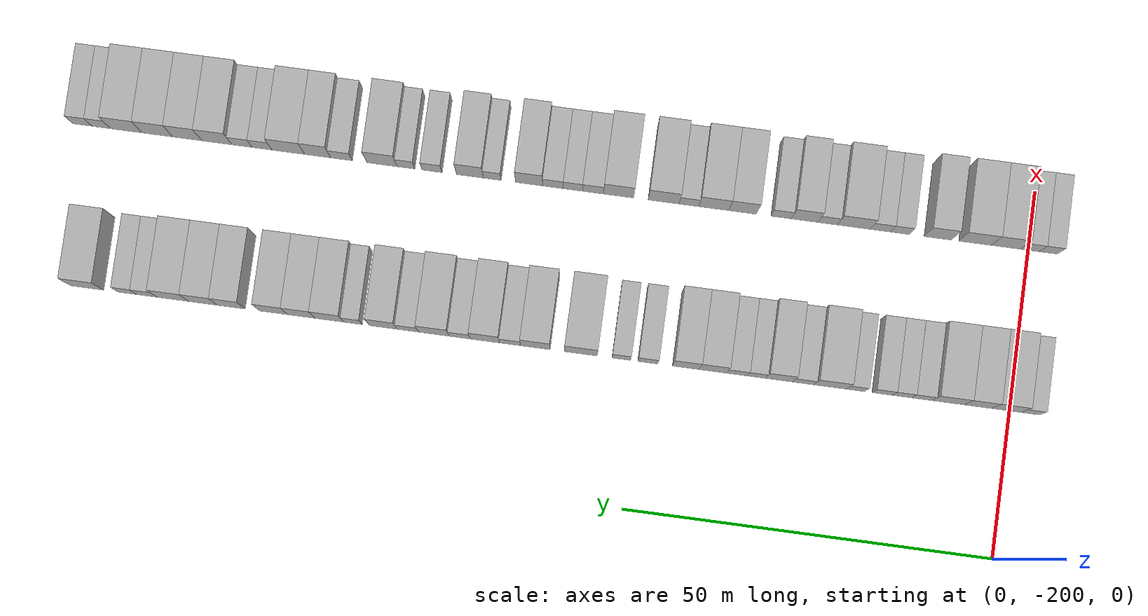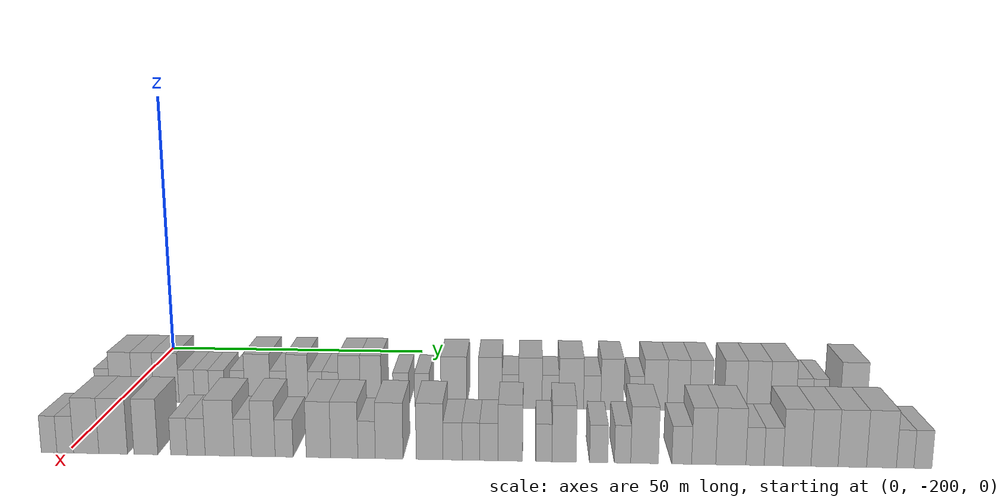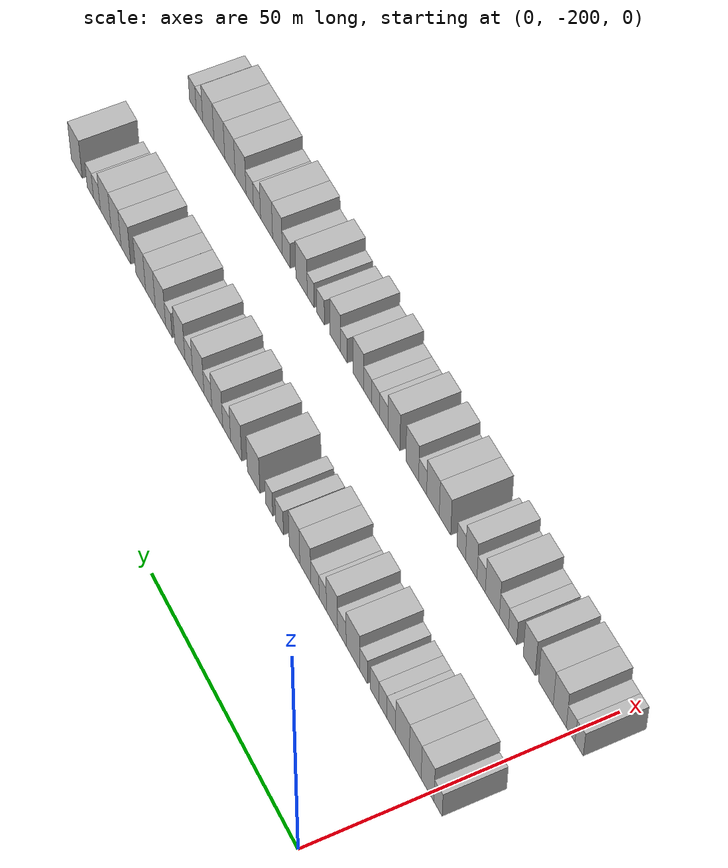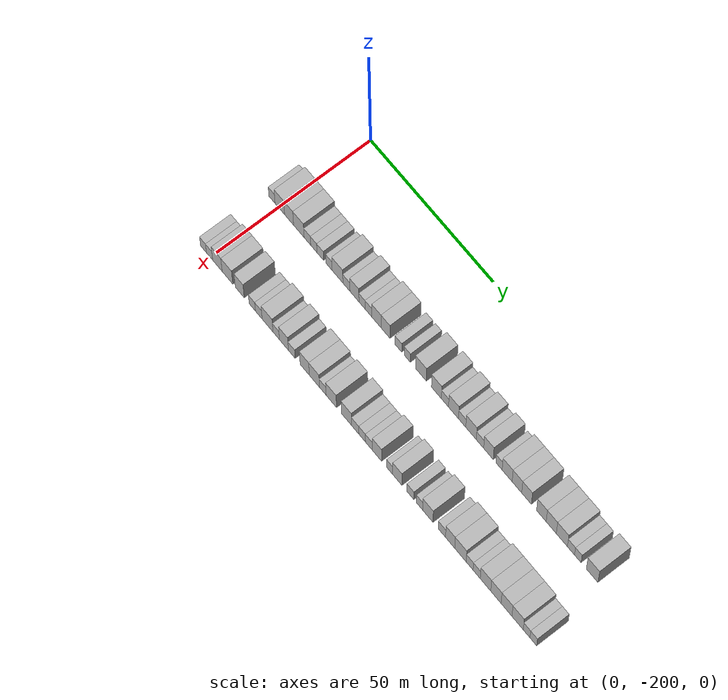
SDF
<sdf version="1.6">
 <world name="default">
  <model name="building_1">
   <static>1</static>
   <pose>25.0000 -202.7227 0 0.000000 0.000000 0.000000</pose>
   <link name="link">
    <pose>0 0 3.00 0 0 0</pose>
    <collision name="collision"><geometry><box><size>10.0000 2.5547 6.0000</size></box></geometry></collision>
    <visual name="visual">
     <cast_shadows>0</cast_shadows>
     <geometry><box><size>10.0000 2.5547 6.0000</size></box></geometry>
     <material>
      <script>
       <uri>model://HANNAS_wall/materials/scripts</uri>
       <uri>model://HANNAS_wall/materials/textures</uri>
       <name>vrc/HANNAS_wall</name>
      </script>
     </material>
    </visual>
   </link>
  </model>
  <model name="building_2">
   <static>1</static>
   <pose>25.0000 -199.4642 0 0.000000 0.000000 0.000000</pose>
   <link name="link">
    <pose>0 0 4.50 0 0 0</pose>
    <collision name="collision"><geometry><box><size>10.0000 3.9621 9.0000</size></box></geometry></collision>
    <visual name="visual">
     <cast_shadows>0</cast_shadows>
     <geometry><box><size>10.0000 3.9621 9.0000</size></box></geometry>
     <material>
      <script>
       <uri>model://HANNAS_wall/materials/scripts</uri>
       <uri>model://HANNAS_wall/materials/textures</uri>
       <name>vrc/HANNAS_wall</name>
      </script>
     </material>
    </visual>
   </link>
  </model>
  <model name="building_3">
   <static>1</static>
   <pose>25.0000 -195.6137 0 0.000000 0.000000 0.000000</pose>
   <link name="link">
    <pose>0 0 4.50 0 0 0</pose>
    <collision name="collision"><geometry><box><size>10.0000 3.7389 9.0000</size></box></geometry></collision>
    <visual name="visual">
     <cast_shadows>0</cast_shadows>
     <geometry><box><size>10.0000 3.7389 9.0000</size></box></geometry>
     <material>
      <script>
       <uri>model://HANNAS_wall/materials/scripts</uri>
       <uri>model://HANNAS_wall/materials/textures</uri>
       <name>vrc/HANNAS_wall</name>
      </script>
     </material>
    </visual>
   </link>
  </model>
  <model name="building_4">
   <static>1</static>
   <pose>25.0000 -191.5522 0 0.000000 0.000000 0.000000</pose>
   <link name="link">
    <pose>0 0 4.50 0 0 0</pose>
    <collision name="collision"><geometry><box><size>10.0000 4.3840 9.0000</size></box></geometry></collision>
    <visual name="visual">
     <cast_shadows>0</cast_shadows>
     <geometry><box><size>10.0000 4.3840 9.0000</size></box></geometry>
     <material>
      <script>
       <uri>model://HANNAS_wall/materials/scripts</uri>
       <uri>model://HANNAS_wall/materials/textures</uri>
       <name>vrc/HANNAS_wall</name>
      </script>
     </material>
    </visual>
   </link>
  </model>
  <model name="building_5">
   <static>1</static>
   <pose>25.0000 -188.0011 0 0.000000 0.000000 0.000000</pose>
   <link name="link">
    <pose>0 0 3.00 0 0 0</pose>
    <collision name="collision"><geometry><box><size>10.0000 2.7184 6.0000</size></box></geometry></collision>
    <visual name="visual">
     <cast_shadows>0</cast_shadows>
     <geometry><box><size>10.0000 2.7184 6.0000</size></box></geometry>
     <material>
      <script>
       <uri>model://HANNAS_wall/materials/scripts</uri>
       <uri>model://HANNAS_wall/materials/textures</uri>
       <name>vrc/HANNAS_wall</name>
      </script>
     </material>
    </visual>
   </link>
  </model>
  <model name="building_6">
   <static>1</static>
   <pose>25.0000 -185.3521 0 0.000000 0.000000 0.000000</pose>
   <link name="link">
    <pose>0 0 3.00 0 0 0</pose>
    <collision name="collision"><geometry><box><size>10.0000 2.5795 6.0000</size></box></geometry></collision>
    <visual name="visual">
     <cast_shadows>0</cast_shadows>
     <geometry><box><size>10.0000 2.5795 6.0000</size></box></geometry>
     <material>
      <script>
       <uri>model://HANNAS_wall/materials/scripts</uri>
       <uri>model://HANNAS_wall/materials/textures</uri>
       <name>vrc/HANNAS_wall</name>
      </script>
     </material>
    </visual>
   </link>
  </model>
  <model name="building_7">
   <static>1</static>
   <pose>25.0000 -182.6948 0 0.000000 0.000000 0.000000</pose>
   <link name="link">
    <pose>0 0 3.00 0 0 0</pose>
    <collision name="collision"><geometry><box><size>10.0000 2.7350 6.0000</size></box></geometry></collision>
    <visual name="visual">
     <cast_shadows>0</cast_shadows>
     <geometry><box><size>10.0000 2.7350 6.0000</size></box></geometry>
     <material>
      <script>
       <uri>model://HANNAS_wall/materials/scripts</uri>
       <uri>model://HANNAS_wall/materials/textures</uri>
       <name>vrc/HANNAS_wall</name>
      </script>
     </material>
    </visual>
   </link>
  </model>
  <model name="building_8">
   <static>1</static>
   <pose>25.0000 -179.0899 0 0.000000 0.000000 0.000000</pose>
   <link name="link">
    <pose>0 0 3.00 0 0 0</pose>
    <collision name="collision"><geometry><box><size>10.0000 2.4749 6.0000</size></box></geometry></collision>
    <visual name="visual">
     <cast_shadows>0</cast_shadows>
     <geometry><box><size>10.0000 2.4749 6.0000</size></box></geometry>
     <material>
      <script>
       <uri>model://HANNAS_wall/materials/scripts</uri>
       <uri>model://HANNAS_wall/materials/textures</uri>
       <name>vrc/HANNAS_wall</name>
      </script>
     </material>
    </visual>
   </link>
  </model>
  <model name="building_9">
   <static>1</static>
   <pose>25.0000 -175.6218 0 0.000000 0.000000 0.000000</pose>
   <link name="link">
    <pose>0 0 4.50 0 0 0</pose>
    <collision name="collision"><geometry><box><size>10.0000 4.4612 9.0000</size></box></geometry></collision>
    <visual name="visual">
     <cast_shadows>0</cast_shadows>
     <geometry><box><size>10.0000 4.4612 9.0000</size></box></geometry>
     <material>
      <script>
       <uri>model://HANNAS_wall/materials/scripts</uri>
       <uri>model://HANNAS_wall/materials/textures</uri>
       <name>vrc/HANNAS_wall</name>
      </script>
     </material>
    </visual>
   </link>
  </model>
  <model name="building_10">
   <static>1</static>
   <pose>25.0000 -171.9620 0 0.000000 0.000000 0.000000</pose>
   <link name="link">
    <pose>0 0 3.00 0 0 0</pose>
    <collision name="collision"><geometry><box><size>10.0000 2.8583 6.0000</size></box></geometry></collision>
    <visual name="visual">
     <cast_shadows>0</cast_shadows>
     <geometry><box><size>10.0000 2.8583 6.0000</size></box></geometry>
     <material>
      <script>
       <uri>model://HANNAS_wall/materials/scripts</uri>
       <uri>model://HANNAS_wall/materials/textures</uri>
       <name>vrc/HANNAS_wall</name>
      </script>
     </material>
    </visual>
   </link>
  </model>
  <model name="building_11">
   <static>1</static>
   <pose>25.0000 -168.6852 0 0.000000 0.000000 0.000000</pose>
   <link name="link">
    <pose>0 0 4.50 0 0 0</pose>
    <collision name="collision"><geometry><box><size>10.0000 3.6953 9.0000</size></box></geometry></collision>
    <visual name="visual">
     <cast_shadows>0</cast_shadows>
     <geometry><box><size>10.0000 3.6953 9.0000</size></box></geometry>
     <material>
      <script>
       <uri>model://HANNAS_wall/materials/scripts</uri>
       <uri>model://HANNAS_wall/materials/textures</uri>
       <name>vrc/HANNAS_wall</name>
      </script>
     </material>
    </visual>
   </link>
  </model>
  <model name="building_12">
   <static>1</static>
   <pose>25.0000 -165.6079 0 0.000000 0.000000 0.000000</pose>
   <link name="link">
    <pose>0 0 3.00 0 0 0</pose>
    <collision name="collision"><geometry><box><size>10.0000 2.4591 6.0000</size></box></geometry></collision>
    <visual name="visual">
     <cast_shadows>0</cast_shadows>
     <geometry><box><size>10.0000 2.4591 6.0000</size></box></geometry>
     <material>
      <script>
       <uri>model://HANNAS_wall/materials/scripts</uri>
       <uri>model://HANNAS_wall/materials/textures</uri>
       <name>vrc/HANNAS_wall</name>
      </script>
     </material>
    </visual>
   </link>
  </model>
  <model name="building_13">
   <static>1</static>
   <pose>25.0000 -162.9786 0 0.000000 0.000000 0.000000</pose>
   <link name="link">
    <pose>0 0 3.00 0 0 0</pose>
    <collision name="collision"><geometry><box><size>10.0000 2.7996 6.0000</size></box></geometry></collision>
    <visual name="visual">
     <cast_shadows>0</cast_shadows>
     <geometry><box><size>10.0000 2.7996 6.0000</size></box></geometry>
     <material>
      <script>
       <uri>model://HANNAS_wall/materials/scripts</uri>
       <uri>model://HANNAS_wall/materials/textures</uri>
       <name>vrc/HANNAS_wall</name>
      </script>
     </material>
    </visual>
   </link>
  </model>
  <model name="building_14">
   <static>1</static>
   <pose>25.0000 -159.7097 0 0.000000 0.000000 0.000000</pose>
   <link name="link">
    <pose>0 0 4.50 0 0 0</pose>
    <collision name="collision"><geometry><box><size>10.0000 3.7382 9.0000</size></box></geometry></collision>
    <visual name="visual">
     <cast_shadows>0</cast_shadows>
     <geometry><box><size>10.0000 3.7382 9.0000</size></box></geometry>
     <material>
      <script>
       <uri>model://HANNAS_wall/materials/scripts</uri>
       <uri>model://HANNAS_wall/materials/textures</uri>
       <name>vrc/HANNAS_wall</name>
      </script>
     </material>
    </visual>
   </link>
  </model>
  <model name="building_15">
   <static>1</static>
   <pose>25.0000 -156.0241 0 0.000000 0.000000 0.000000</pose>
   <link name="link">
    <pose>0 0 4.50 0 0 0</pose>
    <collision name="collision"><geometry><box><size>10.0000 3.6329 9.0000</size></box></geometry></collision>
    <visual name="visual">
     <cast_shadows>0</cast_shadows>
     <geometry><box><size>10.0000 3.6329 9.0000</size></box></geometry>
     <material>
      <script>
       <uri>model://HANNAS_wall/materials/scripts</uri>
       <uri>model://HANNAS_wall/materials/textures</uri>
       <name>vrc/HANNAS_wall</name>
      </script>
     </material>
    </visual>
   </link>
  </model>
  <model name="building_16">
   <static>1</static>
   <pose>25.0000 -150.8501 0 0.000000 0.000000 0.000000</pose>
   <link name="link">
    <pose>0 0 3.00 0 0 0</pose>
    <collision name="collision"><geometry><box><size>10.0000 2.7150 6.0000</size></box></geometry></collision>
    <visual name="visual">
     <cast_shadows>0</cast_shadows>
     <geometry><box><size>10.0000 2.7150 6.0000</size></box></geometry>
     <material>
      <script>
       <uri>model://HANNAS_wall/materials/scripts</uri>
       <uri>model://HANNAS_wall/materials/textures</uri>
       <name>vrc/HANNAS_wall</name>
      </script>
     </material>
    </visual>
   </link>
  </model>
  <model name="building_17">
   <static>1</static>
   <pose>25.0000 -147.2384 0 0.000000 0.000000 0.000000</pose>
   <link name="link">
    <pose>0 0 3.00 0 0 0</pose>
    <collision name="collision"><geometry><box><size>10.0000 2.5084 6.0000</size></box></geometry></collision>
    <visual name="visual">
     <cast_shadows>0</cast_shadows>
     <geometry><box><size>10.0000 2.5084 6.0000</size></box></geometry>
     <material>
      <script>
       <uri>model://HANNAS_wall/materials/scripts</uri>
       <uri>model://HANNAS_wall/materials/textures</uri>
       <name>vrc/HANNAS_wall</name>
      </script>
     </material>
    </visual>
   </link>
  </model>
  <model name="building_18">
   <static>1</static>
   <pose>25.0000 -141.7645 0 0.000000 0.000000 0.000000</pose>
   <link name="link">
    <pose>0 0 4.50 0 0 0</pose>
    <collision name="collision"><geometry><box><size>10.0000 4.4394 9.0000</size></box></geometry></collision>
    <visual name="visual">
     <cast_shadows>0</cast_shadows>
     <geometry><box><size>10.0000 4.4394 9.0000</size></box></geometry>
     <material>
      <script>
       <uri>model://HANNAS_wall/materials/scripts</uri>
       <uri>model://HANNAS_wall/materials/textures</uri>
       <name>vrc/HANNAS_wall</name>
      </script>
     </material>
    </visual>
   </link>
  </model>
  <model name="building_19">
   <static>1</static>
   <pose>25.0000 -135.5468 0 0.000000 0.000000 0.000000</pose>
   <link name="link">
    <pose>0 0 4.50 0 0 0</pose>
    <collision name="collision"><geometry><box><size>10.0000 3.9960 9.0000</size></box></geometry></collision>
    <visual name="visual">
     <cast_shadows>0</cast_shadows>
     <geometry><box><size>10.0000 3.9960 9.0000</size></box></geometry>
     <material>
      <script>
       <uri>model://HANNAS_wall/materials/scripts</uri>
       <uri>model://HANNAS_wall/materials/textures</uri>
       <name>vrc/HANNAS_wall</name>
      </script>
     </material>
    </visual>
   </link>
  </model>
  <model name="building_20">
   <static>1</static>
   <pose>25.0000 -132.1186 0 0.000000 0.000000 0.000000</pose>
   <link name="link">
    <pose>0 0 3.00 0 0 0</pose>
    <collision name="collision"><geometry><box><size>10.0000 2.8604 6.0000</size></box></geometry></collision>
    <visual name="visual">
     <cast_shadows>0</cast_shadows>
     <geometry><box><size>10.0000 2.8604 6.0000</size></box></geometry>
     <material>
      <script>
       <uri>model://HANNAS_wall/materials/scripts</uri>
       <uri>model://HANNAS_wall/materials/textures</uri>
       <name>vrc/HANNAS_wall</name>
      </script>
     </material>
    </visual>
   </link>
  </model>
  <model name="building_21">
   <static>1</static>
   <pose>25.0000 -128.6998 0 0.000000 0.000000 0.000000</pose>
   <link name="link">
    <pose>0 0 4.50 0 0 0</pose>
    <collision name="collision"><geometry><box><size>10.0000 3.9771 9.0000</size></box></geometry></collision>
    <visual name="visual">
     <cast_shadows>0</cast_shadows>
     <geometry><box><size>10.0000 3.9771 9.0000</size></box></geometry>
     <material>
      <script>
       <uri>model://HANNAS_wall/materials/scripts</uri>
       <uri>model://HANNAS_wall/materials/textures</uri>
       <name>vrc/HANNAS_wall</name>
      </script>
     </material>
    </visual>
   </link>
  </model>
  <model name="building_22">
   <static>1</static>
   <pose>25.0000 -125.2669 0 0.000000 0.000000 0.000000</pose>
   <link name="link">
    <pose>0 0 3.00 0 0 0</pose>
    <collision name="collision"><geometry><box><size>10.0000 2.8887 6.0000</size></box></geometry></collision>
    <visual name="visual">
     <cast_shadows>0</cast_shadows>
     <geometry><box><size>10.0000 2.8887 6.0000</size></box></geometry>
     <material>
      <script>
       <uri>model://HANNAS_wall/materials/scripts</uri>
       <uri>model://HANNAS_wall/materials/textures</uri>
       <name>vrc/HANNAS_wall</name>
      </script>
     </material>
    </visual>
   </link>
  </model>
  <model name="building_23">
   <static>1</static>
   <pose>25.0000 -121.7365 0 0.000000 0.000000 0.000000</pose>
   <link name="link">
    <pose>0 0 4.50 0 0 0</pose>
    <collision name="collision"><geometry><box><size>10.0000 4.1721 9.0000</size></box></geometry></collision>
    <visual name="visual">
     <cast_shadows>0</cast_shadows>
     <geometry><box><size>10.0000 4.1721 9.0000</size></box></geometry>
     <material>
      <script>
       <uri>model://HANNAS_wall/materials/scripts</uri>
       <uri>model://HANNAS_wall/materials/textures</uri>
       <name>vrc/HANNAS_wall</name>
      </script>
     </material>
    </visual>
   </link>
  </model>
  <model name="building_24">
   <static>1</static>
   <pose>25.0000 -118.1904 0 0.000000 0.000000 0.000000</pose>
   <link name="link">
    <pose>0 0 3.00 0 0 0</pose>
    <collision name="collision"><geometry><box><size>10.0000 2.9200 6.0000</size></box></geometry></collision>
    <visual name="visual">
     <cast_shadows>0</cast_shadows>
     <geometry><box><size>10.0000 2.9200 6.0000</size></box></geometry>
     <material>
      <script>
       <uri>model://HANNAS_wall/materials/scripts</uri>
       <uri>model://HANNAS_wall/materials/textures</uri>
       <name>vrc/HANNAS_wall</name>
      </script>
     </material>
    </visual>
   </link>
  </model>
  <model name="building_25">
   <static>1</static>
   <pose>25.0000 -114.8295 0 0.000000 0.000000 0.000000</pose>
   <link name="link">
    <pose>0 0 4.50 0 0 0</pose>
    <collision name="collision"><geometry><box><size>10.0000 3.8018 9.0000</size></box></geometry></collision>
    <visual name="visual">
     <cast_shadows>0</cast_shadows>
     <geometry><box><size>10.0000 3.8018 9.0000</size></box></geometry>
     <material>
      <script>
       <uri>model://HANNAS_wall/materials/scripts</uri>
       <uri>model://HANNAS_wall/materials/textures</uri>
       <name>vrc/HANNAS_wall</name>
      </script>
     </material>
    </visual>
   </link>
  </model>
  <model name="building_26">
   <static>1</static>
   <pose>25.0000 -110.6860 0 0.000000 0.000000 0.000000</pose>
   <link name="link">
    <pose>0 0 3.00 0 0 0</pose>
    <collision name="collision"><geometry><box><size>10.0000 2.4853 6.0000</size></box></geometry></collision>
    <visual name="visual">
     <cast_shadows>0</cast_shadows>
     <geometry><box><size>10.0000 2.4853 6.0000</size></box></geometry>
     <material>
      <script>
       <uri>model://HANNAS_wall/materials/scripts</uri>
       <uri>model://HANNAS_wall/materials/textures</uri>
       <name>vrc/HANNAS_wall</name>
      </script>
     </material>
    </visual>
   </link>
  </model>
  <model name="building_27">
   <static>1</static>
   <pose>25.0000 -107.4767 0 0.000000 0.000000 0.000000</pose>
   <link name="link">
    <pose>0 0 4.50 0 0 0</pose>
    <collision name="collision"><geometry><box><size>10.0000 3.9333 9.0000</size></box></geometry></collision>
    <visual name="visual">
     <cast_shadows>0</cast_shadows>
     <geometry><box><size>10.0000 3.9333 9.0000</size></box></geometry>
     <material>
      <script>
       <uri>model://HANNAS_wall/materials/scripts</uri>
       <uri>model://HANNAS_wall/materials/textures</uri>
       <name>vrc/HANNAS_wall</name>
      </script>
     </material>
    </visual>
   </link>
  </model>
  <model name="building_28">
   <static>1</static>
   <pose>25.0000 -103.6304 0 0.000000 0.000000 0.000000</pose>
   <link name="link">
    <pose>0 0 4.50 0 0 0</pose>
    <collision name="collision"><geometry><box><size>10.0000 3.7592 9.0000</size></box></geometry></collision>
    <visual name="visual">
     <cast_shadows>0</cast_shadows>
     <geometry><box><size>10.0000 3.7592 9.0000</size></box></geometry>
     <material>
      <script>
       <uri>model://HANNAS_wall/materials/scripts</uri>
       <uri>model://HANNAS_wall/materials/textures</uri>
       <name>vrc/HANNAS_wall</name>
      </script>
     </material>
    </visual>
   </link>
  </model>
  <model name="building_29">
   <static>1</static>
   <pose>25.0000 -99.8501 0 0.000000 0.000000 0.000000</pose>
   <link name="link">
    <pose>0 0 4.50 0 0 0</pose>
    <collision name="collision"><geometry><box><size>10.0000 3.8014 9.0000</size></box></geometry></collision>
    <visual name="visual">
     <cast_shadows>0</cast_shadows>
     <geometry><box><size>10.0000 3.8014 9.0000</size></box></geometry>
     <material>
      <script>
       <uri>model://HANNAS_wall/materials/scripts</uri>
       <uri>model://HANNAS_wall/materials/textures</uri>
       <name>vrc/HANNAS_wall</name>
      </script>
     </material>
    </visual>
   </link>
  </model>
  <model name="building_30">
   <static>1</static>
   <pose>25.0000 -94.0682 0 0.000000 0.000000 0.000000</pose>
   <link name="link">
    <pose>0 0 4.50 0 0 0</pose>
    <collision name="collision"><geometry><box><size>10.0000 3.7626 9.0000</size></box></geometry></collision>
    <visual name="visual">
     <cast_shadows>0</cast_shadows>
     <geometry><box><size>10.0000 3.7626 9.0000</size></box></geometry>
     <material>
      <script>
       <uri>model://HANNAS_wall/materials/scripts</uri>
       <uri>model://HANNAS_wall/materials/textures</uri>
       <name>vrc/HANNAS_wall</name>
      </script>
     </material>
    </visual>
   </link>
  </model>
  <model name="building_31">
   <static>1</static>
   <pose>25.0000 -90.2141 0 0.000000 0.000000 0.000000</pose>
   <link name="link">
    <pose>0 0 4.50 0 0 0</pose>
    <collision name="collision"><geometry><box><size>10.0000 3.9455 9.0000</size></box></geometry></collision>
    <visual name="visual">
     <cast_shadows>0</cast_shadows>
     <geometry><box><size>10.0000 3.9455 9.0000</size></box></geometry>
     <material>
      <script>
       <uri>model://HANNAS_wall/materials/scripts</uri>
       <uri>model://HANNAS_wall/materials/textures</uri>
       <name>vrc/HANNAS_wall</name>
      </script>
     </material>
    </visual>
   </link>
  </model>
  <model name="building_32">
   <static>1</static>
   <pose>25.0000 -86.0812 0 0.000000 0.000000 0.000000</pose>
   <link name="link">
    <pose>0 0 4.50 0 0 0</pose>
    <collision name="collision"><geometry><box><size>10.0000 4.3205 9.0000</size></box></geometry></collision>
    <visual name="visual">
     <cast_shadows>0</cast_shadows>
     <geometry><box><size>10.0000 4.3205 9.0000</size></box></geometry>
     <material>
      <script>
       <uri>model://HANNAS_wall/materials/scripts</uri>
       <uri>model://HANNAS_wall/materials/textures</uri>
       <name>vrc/HANNAS_wall</name>
      </script>
     </material>
    </visual>
   </link>
  </model>
  <model name="building_33">
   <static>1</static>
   <pose>25.0000 -82.5357 0 0.000000 0.000000 0.000000</pose>
   <link name="link">
    <pose>0 0 3.00 0 0 0</pose>
    <collision name="collision"><geometry><box><size>10.0000 2.7704 6.0000</size></box></geometry></collision>
    <visual name="visual">
     <cast_shadows>0</cast_shadows>
     <geometry><box><size>10.0000 2.7704 6.0000</size></box></geometry>
     <material>
      <script>
       <uri>model://HANNAS_wall/materials/scripts</uri>
       <uri>model://HANNAS_wall/materials/textures</uri>
       <name>vrc/HANNAS_wall</name>
      </script>
     </material>
    </visual>
   </link>
  </model>
  <model name="building_34">
   <static>1</static>
   <pose>25.0000 -79.8759 0 0.000000 0.000000 0.000000</pose>
   <link name="link">
    <pose>0 0 3.00 0 0 0</pose>
    <collision name="collision"><geometry><box><size>10.0000 2.5492 6.0000</size></box></geometry></collision>
    <visual name="visual">
     <cast_shadows>0</cast_shadows>
     <geometry><box><size>10.0000 2.5492 6.0000</size></box></geometry>
     <material>
      <script>
       <uri>model://HANNAS_wall/materials/scripts</uri>
       <uri>model://HANNAS_wall/materials/textures</uri>
       <name>vrc/HANNAS_wall</name>
      </script>
     </material>
    </visual>
   </link>
  </model>
  <model name="building_35">
   <static>1</static>
   <pose>25.0000 -74.3576 0 0.000000 0.000000 0.000000</pose>
   <link name="link">
    <pose>0 0 4.50 0 0 0</pose>
    <collision name="collision"><geometry><box><size>10.0000 4.4875 9.0000</size></box></geometry></collision>
    <visual name="visual">
     <cast_shadows>0</cast_shadows>
     <geometry><box><size>10.0000 4.4875 9.0000</size></box></geometry>
     <material>
      <script>
       <uri>model://HANNAS_wall/materials/scripts</uri>
       <uri>model://HANNAS_wall/materials/textures</uri>
       <name>vrc/HANNAS_wall</name>
      </script>
     </material>
    </visual>
   </link>
  </model>
  <model name="building_106">
   <static>1</static>
   <pose>47.0000 -202.7649 0 0.000000 0.000000 0.000000</pose>
   <link name="link">
    <pose>0 0 3.00 0 0 0</pose>
    <collision name="collision"><geometry><box><size>10.0000 2.4702 6.0000</size></box></geometry></collision>
    <visual name="visual">
     <cast_shadows>0</cast_shadows>
     <geometry><box><size>10.0000 2.4702 6.0000</size></box></geometry>
     <material>
      <script>
       <uri>model://HANNAS_wall/materials/scripts</uri>
       <uri>model://HANNAS_wall/materials/textures</uri>
       <name>vrc/HANNAS_wall</name>
      </script>
     </material>
    </visual>
   </link>
  </model>
  <model name="building_107">
   <static>1</static>
   <pose>47.0000 -200.2270 0 0.000000 0.000000 0.000000</pose>
   <link name="link">
    <pose>0 0 3.00 0 0 0</pose>
    <collision name="collision"><geometry><box><size>10.0000 2.6056 6.0000</size></box></geometry></collision>
    <visual name="visual">
     <cast_shadows>0</cast_shadows>
     <geometry><box><size>10.0000 2.6056 6.0000</size></box></geometry>
     <material>
      <script>
       <uri>model://HANNAS_wall/materials/scripts</uri>
       <uri>model://HANNAS_wall/materials/textures</uri>
       <name>vrc/HANNAS_wall</name>
      </script>
     </material>
    </visual>
   </link>
  </model>
  <model name="building_108">
   <static>1</static>
   <pose>47.0000 -196.9460 0 0.000000 0.000000 0.000000</pose>
   <link name="link">
    <pose>0 0 4.50 0 0 0</pose>
    <collision name="collision"><geometry><box><size>10.0000 3.9562 9.0000</size></box></geometry></collision>
    <visual name="visual">
     <cast_shadows>0</cast_shadows>
     <geometry><box><size>10.0000 3.9562 9.0000</size></box></geometry>
     <material>
      <script>
       <uri>model://HANNAS_wall/materials/scripts</uri>
       <uri>model://HANNAS_wall/materials/textures</uri>
       <name>vrc/HANNAS_wall</name>
      </script>
     </material>
    </visual>
   </link>
  </model>
  <model name="building_109">
   <static>1</static>
   <pose>47.0000 -192.7400 0 0.000000 0.000000 0.000000</pose>
   <link name="link">
    <pose>0 0 4.50 0 0 0</pose>
    <collision name="collision"><geometry><box><size>10.0000 4.4558 9.0000</size></box></geometry></collision>
    <visual name="visual">
     <cast_shadows>0</cast_shadows>
     <geometry><box><size>10.0000 4.4558 9.0000</size></box></geometry>
     <material>
      <script>
       <uri>model://HANNAS_wall/materials/scripts</uri>
       <uri>model://HANNAS_wall/materials/textures</uri>
       <name>vrc/HANNAS_wall</name>
      </script>
     </material>
    </visual>
   </link>
  </model>
  <model name="building_110">
   <static>1</static>
   <pose>47.0000 -187.6516 0 0.000000 0.000000 0.000000</pose>
   <link name="link">
    <pose>0 0 4.50 0 0 0</pose>
    <collision name="collision"><geometry><box><size>10.0000 3.7209 9.0000</size></box></geometry></collision>
    <visual name="visual">
     <cast_shadows>0</cast_shadows>
     <geometry><box><size>10.0000 3.7209 9.0000</size></box></geometry>
     <material>
      <script>
       <uri>model://HANNAS_wall/materials/scripts</uri>
       <uri>model://HANNAS_wall/materials/textures</uri>
       <name>vrc/HANNAS_wall</name>
      </script>
     </material>
    </visual>
   </link>
  </model>
  <model name="building_111">
   <static>1</static>
   <pose>47.0000 -182.5007 0 0.000000 0.000000 0.000000</pose>
   <link name="link">
    <pose>0 0 3.00 0 0 0</pose>
    <collision name="collision"><geometry><box><size>10.0000 2.5810 6.0000</size></box></geometry></collision>
    <visual name="visual">
     <cast_shadows>0</cast_shadows>
     <geometry><box><size>10.0000 2.5810 6.0000</size></box></geometry>
     <material>
      <script>
       <uri>model://HANNAS_wall/materials/scripts</uri>
       <uri>model://HANNAS_wall/materials/textures</uri>
       <name>vrc/HANNAS_wall</name>
      </script>
     </material>
    </visual>
   </link>
  </model>
  <model name="building_112">
   <static>1</static>
   <pose>47.0000 -179.8208 0 0.000000 0.000000 0.000000</pose>
   <link name="link">
    <pose>0 0 3.00 0 0 0</pose>
    <collision name="collision"><geometry><box><size>10.0000 2.7787 6.0000</size></box></geometry></collision>
    <visual name="visual">
     <cast_shadows>0</cast_shadows>
     <geometry><box><size>10.0000 2.7787 6.0000</size></box></geometry>
     <material>
      <script>
       <uri>model://HANNAS_wall/materials/scripts</uri>
       <uri>model://HANNAS_wall/materials/textures</uri>
       <name>vrc/HANNAS_wall</name>
      </script>
     </material>
    </visual>
   </link>
  </model>
  <model name="building_113">
   <static>1</static>
   <pose>47.0000 -176.1829 0 0.000000 0.000000 0.000000</pose>
   <link name="link">
    <pose>0 0 4.50 0 0 0</pose>
    <collision name="collision"><geometry><box><size>10.0000 4.4972 9.0000</size></box></geometry></collision>
    <visual name="visual">
     <cast_shadows>0</cast_shadows>
     <geometry><box><size>10.0000 4.4972 9.0000</size></box></geometry>
     <material>
      <script>
       <uri>model://HANNAS_wall/materials/scripts</uri>
       <uri>model://HANNAS_wall/materials/textures</uri>
       <name>vrc/HANNAS_wall</name>
      </script>
     </material>
    </visual>
   </link>
  </model>
  <model name="building_114">
   <static>1</static>
   <pose>47.0000 -172.6053 0 0.000000 0.000000 0.000000</pose>
   <link name="link">
    <pose>0 0 3.00 0 0 0</pose>
    <collision name="collision"><geometry><box><size>10.0000 2.6580 6.0000</size></box></geometry></collision>
    <visual name="visual">
     <cast_shadows>0</cast_shadows>
     <geometry><box><size>10.0000 2.6580 6.0000</size></box></geometry>
     <material>
      <script>
       <uri>model://HANNAS_wall/materials/scripts</uri>
       <uri>model://HANNAS_wall/materials/textures</uri>
       <name>vrc/HANNAS_wall</name>
      </script>
     </material>
    </visual>
   </link>
  </model>
  <model name="building_115">
   <static>1</static>
   <pose>47.0000 -169.4472 0 0.000000 0.000000 0.000000</pose>
   <link name="link">
    <pose>0 0 4.50 0 0 0</pose>
    <collision name="collision"><geometry><box><size>10.0000 3.6582 9.0000</size></box></geometry></collision>
    <visual name="visual">
     <cast_shadows>0</cast_shadows>
     <geometry><box><size>10.0000 3.6582 9.0000</size></box></geometry>
     <material>
      <script>
       <uri>model://HANNAS_wall/materials/scripts</uri>
       <uri>model://HANNAS_wall/materials/textures</uri>
       <name>vrc/HANNAS_wall</name>
      </script>
     </material>
    </visual>
   </link>
  </model>
  <model name="building_116">
   <static>1</static>
   <pose>47.0000 -166.2341 0 0.000000 0.000000 0.000000</pose>
   <link name="link">
    <pose>0 0 3.00 0 0 0</pose>
    <collision name="collision"><geometry><box><size>10.0000 2.7681 6.0000</size></box></geometry></collision>
    <visual name="visual">
     <cast_shadows>0</cast_shadows>
     <geometry><box><size>10.0000 2.7681 6.0000</size></box></geometry>
     <material>
      <script>
       <uri>model://HANNAS_wall/materials/scripts</uri>
       <uri>model://HANNAS_wall/materials/textures</uri>
       <name>vrc/HANNAS_wall</name>
      </script>
     </material>
    </visual>
   </link>
  </model>
  <model name="building_117">
   <static>1</static>
   <pose>47.0000 -160.9642 0 0.000000 0.000000 0.000000</pose>
   <link name="link">
    <pose>0 0 4.50 0 0 0</pose>
    <collision name="collision"><geometry><box><size>10.0000 3.7717 9.0000</size></box></geometry></collision>
    <visual name="visual">
     <cast_shadows>0</cast_shadows>
     <geometry><box><size>10.0000 3.7717 9.0000</size></box></geometry>
     <material>
      <script>
       <uri>model://HANNAS_wall/materials/scripts</uri>
       <uri>model://HANNAS_wall/materials/textures</uri>
       <name>vrc/HANNAS_wall</name>
      </script>
     </material>
    </visual>
   </link>
  </model>
  <model name="building_118">
   <static>1</static>
   <pose>47.0000 -157.0026 0 0.000000 0.000000 0.000000</pose>
   <link name="link">
    <pose>0 0 4.50 0 0 0</pose>
    <collision name="collision"><geometry><box><size>10.0000 4.1515 9.0000</size></box></geometry></collision>
    <visual name="visual">
     <cast_shadows>0</cast_shadows>
     <geometry><box><size>10.0000 4.1515 9.0000</size></box></geometry>
     <material>
      <script>
       <uri>model://HANNAS_wall/materials/scripts</uri>
       <uri>model://HANNAS_wall/materials/textures</uri>
       <name>vrc/HANNAS_wall</name>
      </script>
     </material>
    </visual>
   </link>
  </model>
  <model name="building_119">
   <static>1</static>
   <pose>47.0000 -153.5906 0 0.000000 0.000000 0.000000</pose>
   <link name="link">
    <pose>0 0 3.00 0 0 0</pose>
    <collision name="collision"><geometry><box><size>10.0000 2.6723 6.0000</size></box></geometry></collision>
    <visual name="visual">
     <cast_shadows>0</cast_shadows>
     <geometry><box><size>10.0000 2.6723 6.0000</size></box></geometry>
     <material>
      <script>
       <uri>model://HANNAS_wall/materials/scripts</uri>
       <uri>model://HANNAS_wall/materials/textures</uri>
       <name>vrc/HANNAS_wall</name>
      </script>
     </material>
    </visual>
   </link>
  </model>
  <model name="building_120">
   <static>1</static>
   <pose>47.0000 -150.1415 0 0.000000 0.000000 0.000000</pose>
   <link name="link">
    <pose>0 0 4.50 0 0 0</pose>
    <collision name="collision"><geometry><box><size>10.0000 4.2259 9.0000</size></box></geometry></collision>
    <visual name="visual">
     <cast_shadows>0</cast_shadows>
     <geometry><box><size>10.0000 4.2259 9.0000</size></box></geometry>
     <material>
      <script>
       <uri>model://HANNAS_wall/materials/scripts</uri>
       <uri>model://HANNAS_wall/materials/textures</uri>
       <name>vrc/HANNAS_wall</name>
      </script>
     </material>
    </visual>
   </link>
  </model>
  <model name="building_121">
   <static>1</static>
   <pose>47.0000 -143.9781 0 0.000000 0.000000 0.000000</pose>
   <link name="link">
    <pose>0 0 4.50 0 0 0</pose>
    <collision name="collision"><geometry><box><size>10.0000 4.1010 9.0000</size></box></geometry></collision>
    <visual name="visual">
     <cast_shadows>0</cast_shadows>
     <geometry><box><size>10.0000 4.1010 9.0000</size></box></geometry>
     <material>
      <script>
       <uri>model://HANNAS_wall/materials/scripts</uri>
       <uri>model://HANNAS_wall/materials/textures</uri>
       <name>vrc/HANNAS_wall</name>
      </script>
     </material>
    </visual>
   </link>
  </model>
  <model name="building_122">
   <static>1</static>
   <pose>47.0000 -140.4767 0 0.000000 0.000000 0.000000</pose>
   <link name="link">
    <pose>0 0 3.00 0 0 0</pose>
    <collision name="collision"><geometry><box><size>10.0000 2.9018 6.0000</size></box></geometry></collision>
    <visual name="visual">
     <cast_shadows>0</cast_shadows>
     <geometry><box><size>10.0000 2.9018 6.0000</size></box></geometry>
     <material>
      <script>
       <uri>model://HANNAS_wall/materials/scripts</uri>
       <uri>model://HANNAS_wall/materials/textures</uri>
       <name>vrc/HANNAS_wall</name>
      </script>
     </material>
    </visual>
   </link>
  </model>
  <model name="building_123">
   <static>1</static>
   <pose>47.0000 -137.7099 0 0.000000 0.000000 0.000000</pose>
   <link name="link">
    <pose>0 0 3.00 0 0 0</pose>
    <collision name="collision"><geometry><box><size>10.0000 2.6318 6.0000</size></box></geometry></collision>
    <visual name="visual">
     <cast_shadows>0</cast_shadows>
     <geometry><box><size>10.0000 2.6318 6.0000</size></box></geometry>
     <material>
      <script>
       <uri>model://HANNAS_wall/materials/scripts</uri>
       <uri>model://HANNAS_wall/materials/textures</uri>
       <name>vrc/HANNAS_wall</name>
      </script>
     </material>
    </visual>
   </link>
  </model>
  <model name="building_124">
   <static>1</static>
   <pose>47.0000 -134.9859 0 0.000000 0.000000 0.000000</pose>
   <link name="link">
    <pose>0 0 3.00 0 0 0</pose>
    <collision name="collision"><geometry><box><size>10.0000 2.8163 6.0000</size></box></geometry></collision>
    <visual name="visual">
     <cast_shadows>0</cast_shadows>
     <geometry><box><size>10.0000 2.8163 6.0000</size></box></geometry>
     <material>
      <script>
       <uri>model://HANNAS_wall/materials/scripts</uri>
       <uri>model://HANNAS_wall/materials/textures</uri>
       <name>vrc/HANNAS_wall</name>
      </script>
     </material>
    </visual>
   </link>
  </model>
  <model name="building_125">
   <static>1</static>
   <pose>47.0000 -131.7285 0 0.000000 0.000000 0.000000</pose>
   <link name="link">
    <pose>0 0 4.50 0 0 0</pose>
    <collision name="collision"><geometry><box><size>10.0000 3.6984 9.0000</size></box></geometry></collision>
    <visual name="visual">
     <cast_shadows>0</cast_shadows>
     <geometry><box><size>10.0000 3.6984 9.0000</size></box></geometry>
     <material>
      <script>
       <uri>model://HANNAS_wall/materials/scripts</uri>
       <uri>model://HANNAS_wall/materials/textures</uri>
       <name>vrc/HANNAS_wall</name>
      </script>
     </material>
    </visual>
   </link>
  </model>
  <model name="building_126">
   <static>1</static>
   <pose>47.0000 -126.6642 0 0.000000 0.000000 0.000000</pose>
   <link name="link">
    <pose>0 0 3.00 0 0 0</pose>
    <collision name="collision"><geometry><box><size>10.0000 2.4302 6.0000</size></box></geometry></collision>
    <visual name="visual">
     <cast_shadows>0</cast_shadows>
     <geometry><box><size>10.0000 2.4302 6.0000</size></box></geometry>
     <material>
      <script>
       <uri>model://HANNAS_wall/materials/scripts</uri>
       <uri>model://HANNAS_wall/materials/textures</uri>
       <name>vrc/HANNAS_wall</name>
      </script>
     </material>
    </visual>
   </link>
  </model>
  <model name="building_127">
   <static>1</static>
   <pose>47.0000 -123.6140 0 0.000000 0.000000 0.000000</pose>
   <link name="link">
    <pose>0 0 4.50 0 0 0</pose>
    <collision name="collision"><geometry><box><size>10.0000 3.6703 9.0000</size></box></geometry></collision>
    <visual name="visual">
     <cast_shadows>0</cast_shadows>
     <geometry><box><size>10.0000 3.6703 9.0000</size></box></geometry>
     <material>
      <script>
       <uri>model://HANNAS_wall/materials/scripts</uri>
       <uri>model://HANNAS_wall/materials/textures</uri>
       <name>vrc/HANNAS_wall</name>
      </script>
     </material>
    </visual>
   </link>
  </model>
  <model name="building_128">
   <static>1</static>
   <pose>47.0000 -118.4074 0 0.000000 0.000000 0.000000</pose>
   <link name="link">
    <pose>0 0 3.00 0 0 0</pose>
    <collision name="collision"><geometry><box><size>10.0000 2.7430 6.0000</size></box></geometry></collision>
    <visual name="visual">
     <cast_shadows>0</cast_shadows>
     <geometry><box><size>10.0000 2.7430 6.0000</size></box></geometry>
     <material>
      <script>
       <uri>model://HANNAS_wall/materials/scripts</uri>
       <uri>model://HANNAS_wall/materials/textures</uri>
       <name>vrc/HANNAS_wall</name>
      </script>
     </material>
    </visual>
   </link>
  </model>
  <model name="building_129">
   <static>1</static>
   <pose>47.0000 -114.8190 0 0.000000 0.000000 0.000000</pose>
   <link name="link">
    <pose>0 0 3.00 0 0 0</pose>
    <collision name="collision"><geometry><box><size>10.0000 2.4338 6.0000</size></box></geometry></collision>
    <visual name="visual">
     <cast_shadows>0</cast_shadows>
     <geometry><box><size>10.0000 2.4338 6.0000</size></box></geometry>
     <material>
      <script>
       <uri>model://HANNAS_wall/materials/scripts</uri>
       <uri>model://HANNAS_wall/materials/textures</uri>
       <name>vrc/HANNAS_wall</name>
      </script>
     </material>
    </visual>
   </link>
  </model>
  <model name="building_130">
   <static>1</static>
   <pose>47.0000 -111.5243 0 0.000000 0.000000 0.000000</pose>
   <link name="link">
    <pose>0 0 4.50 0 0 0</pose>
    <collision name="collision"><geometry><box><size>10.0000 4.1557 9.0000</size></box></geometry></collision>
    <visual name="visual">
     <cast_shadows>0</cast_shadows>
     <geometry><box><size>10.0000 4.1557 9.0000</size></box></geometry>
     <material>
      <script>
       <uri>model://HANNAS_wall/materials/scripts</uri>
       <uri>model://HANNAS_wall/materials/textures</uri>
       <name>vrc/HANNAS_wall</name>
      </script>
     </material>
    </visual>
   </link>
  </model>
  <model name="building_131">
   <static>1</static>
   <pose>47.0000 -105.9740 0 0.000000 0.000000 0.000000</pose>
   <link name="link">
    <pose>0 0 3.00 0 0 0</pose>
    <collision name="collision"><geometry><box><size>10.0000 2.9448 6.0000</size></box></geometry></collision>
    <visual name="visual">
     <cast_shadows>0</cast_shadows>
     <geometry><box><size>10.0000 2.9448 6.0000</size></box></geometry>
     <material>
      <script>
       <uri>model://HANNAS_wall/materials/scripts</uri>
       <uri>model://HANNAS_wall/materials/textures</uri>
       <name>vrc/HANNAS_wall</name>
      </script>
     </material>
    </visual>
   </link>
  </model>
  <model name="building_132">
   <static>1</static>
   <pose>47.0000 -102.6996 0 0.000000 0.000000 0.000000</pose>
   <link name="link">
    <pose>0 0 4.50 0 0 0</pose>
    <collision name="collision"><geometry><box><size>10.0000 3.6041 9.0000</size></box></geometry></collision>
    <visual name="visual">
     <cast_shadows>0</cast_shadows>
     <geometry><box><size>10.0000 3.6041 9.0000</size></box></geometry>
     <material>
      <script>
       <uri>model://HANNAS_wall/materials/scripts</uri>
       <uri>model://HANNAS_wall/materials/textures</uri>
       <name>vrc/HANNAS_wall</name>
      </script>
     </material>
    </visual>
   </link>
  </model>
  <model name="building_133">
   <static>1</static>
   <pose>47.0000 -98.6534 0 0.000000 0.000000 0.000000</pose>
   <link name="link">
    <pose>0 0 4.50 0 0 0</pose>
    <collision name="collision"><geometry><box><size>10.0000 4.4883 9.0000</size></box></geometry></collision>
    <visual name="visual">
     <cast_shadows>0</cast_shadows>
     <geometry><box><size>10.0000 4.4883 9.0000</size></box></geometry>
     <material>
      <script>
       <uri>model://HANNAS_wall/materials/scripts</uri>
       <uri>model://HANNAS_wall/materials/textures</uri>
       <name>vrc/HANNAS_wall</name>
      </script>
     </material>
    </visual>
   </link>
  </model>
  <model name="building_134">
   <static>1</static>
   <pose>47.0000 -95.0569 0 0.000000 0.000000 0.000000</pose>
   <link name="link">
    <pose>0 0 3.00 0 0 0</pose>
    <collision name="collision"><geometry><box><size>10.0000 2.7047 6.0000</size></box></geometry></collision>
    <visual name="visual">
     <cast_shadows>0</cast_shadows>
     <geometry><box><size>10.0000 2.7047 6.0000</size></box></geometry>
     <material>
      <script>
       <uri>model://HANNAS_wall/materials/scripts</uri>
       <uri>model://HANNAS_wall/materials/textures</uri>
       <name>vrc/HANNAS_wall</name>
      </script>
     </material>
    </visual>
   </link>
  </model>
  <model name="building_135">
   <static>1</static>
   <pose>47.0000 -92.3060 0 0.000000 0.000000 0.000000</pose>
   <link name="link">
    <pose>0 0 3.00 0 0 0</pose>
    <collision name="collision"><geometry><box><size>10.0000 2.7970 6.0000</size></box></geometry></collision>
    <visual name="visual">
     <cast_shadows>0</cast_shadows>
     <geometry><box><size>10.0000 2.7970 6.0000</size></box></geometry>
     <material>
      <script>
       <uri>model://HANNAS_wall/materials/scripts</uri>
       <uri>model://HANNAS_wall/materials/textures</uri>
       <name>vrc/HANNAS_wall</name>
      </script>
     </material>
    </visual>
   </link>
  </model>
  <model name="building_136">
   <static>1</static>
   <pose>47.0000 -88.8418 0 0.000000 0.000000 0.000000</pose>
   <link name="link">
    <pose>0 0 4.50 0 0 0</pose>
    <collision name="collision"><geometry><box><size>10.0000 4.1314 9.0000</size></box></geometry></collision>
    <visual name="visual">
     <cast_shadows>0</cast_shadows>
     <geometry><box><size>10.0000 4.1314 9.0000</size></box></geometry>
     <material>
      <script>
       <uri>model://HANNAS_wall/materials/scripts</uri>
       <uri>model://HANNAS_wall/materials/textures</uri>
       <name>vrc/HANNAS_wall</name>
      </script>
     </material>
    </visual>
   </link>
  </model>
  <model name="building_137">
   <static>1</static>
   <pose>47.0000 -84.7727 0 0.000000 0.000000 0.000000</pose>
   <link name="link">
    <pose>0 0 4.50 0 0 0</pose>
    <collision name="collision"><geometry><box><size>10.0000 4.0068 9.0000</size></box></geometry></collision>
    <visual name="visual">
     <cast_shadows>0</cast_shadows>
     <geometry><box><size>10.0000 4.0068 9.0000</size></box></geometry>
     <material>
      <script>
       <uri>model://HANNAS_wall/materials/scripts</uri>
       <uri>model://HANNAS_wall/materials/textures</uri>
       <name>vrc/HANNAS_wall</name>
      </script>
     </material>
    </visual>
   </link>
  </model>
  <model name="building_138">
   <static>1</static>
   <pose>47.0000 -80.6633 0 0.000000 0.000000 0.000000</pose>
   <link name="link">
    <pose>0 0 4.50 0 0 0</pose>
    <collision name="collision"><geometry><box><size>10.0000 4.2121 9.0000</size></box></geometry></collision>
    <visual name="visual">
     <cast_shadows>0</cast_shadows>
     <geometry><box><size>10.0000 4.2121 9.0000</size></box></geometry>
     <material>
      <script>
       <uri>model://HANNAS_wall/materials/scripts</uri>
       <uri>model://HANNAS_wall/materials/textures</uri>
       <name>vrc/HANNAS_wall</name>
      </script>
     </material>
    </visual>
   </link>
  </model>
  <model name="building_139">
   <static>1</static>
   <pose>47.0000 -76.3672 0 0.000000 0.000000 0.000000</pose>
   <link name="link">
    <pose>0 0 4.50 0 0 0</pose>
    <collision name="collision"><geometry><box><size>10.0000 4.3802 9.0000</size></box></geometry></collision>
    <visual name="visual">
     <cast_shadows>0</cast_shadows>
     <geometry><box><size>10.0000 4.3802 9.0000</size></box></geometry>
     <material>
      <script>
       <uri>model://HANNAS_wall/materials/scripts</uri>
       <uri>model://HANNAS_wall/materials/textures</uri>
       <name>vrc/HANNAS_wall</name>
      </script>
     </material>
    </visual>
   </link>
  </model>
  <model name="building_140">
   <static>1</static>
   <pose>47.0000 -72.8871 0 0.000000 0.000000 0.000000</pose>
   <link name="link">
    <pose>0 0 3.00 0 0 0</pose>
    <collision name="collision"><geometry><box><size>10.0000 2.5801 6.0000</size></box></geometry></collision>
    <visual name="visual">
     <cast_shadows>0</cast_shadows>
     <geometry><box><size>10.0000 2.5801 6.0000</size></box></geometry>
     <material>
      <script>
       <uri>model://HANNAS_wall/materials/scripts</uri>
       <uri>model://HANNAS_wall/materials/textures</uri>
       <name>vrc/HANNAS_wall</name>
      </script>
     </material>
    </visual>
   </link>
  </model>
  <model name="building_141">
   <static>1</static>
   <pose>47.0000 -70.2800 0 0.000000 0.000000 0.000000</pose>
   <link name="link">
    <pose>0 0 3.00 0 0 0</pose>
    <collision name="collision"><geometry><box><size>10.0000 2.6341 6.0000</size></box></geometry></collision>
    <visual name="visual">
     <cast_shadows>0</cast_shadows>
     <geometry><box><size>10.0000 2.6341 6.0000</size></box></geometry>
     <material>
      <script>
       <uri>model://HANNAS_wall/materials/scripts</uri>
       <uri>model://HANNAS_wall/materials/textures</uri>
       <name>vrc/HANNAS_wall</name>
      </script>
     </material>
    </visual>
   </link>
  </model>
 </world>
</sdf>
